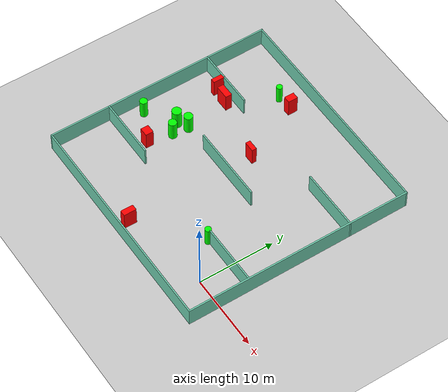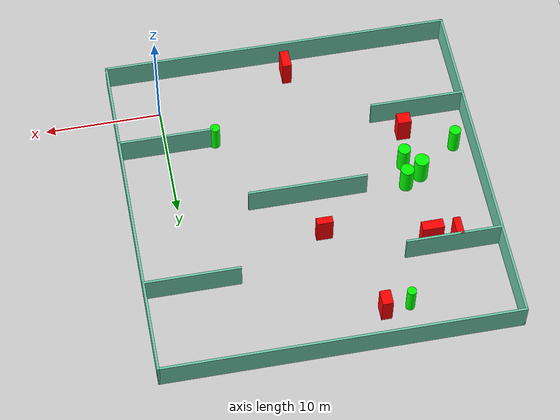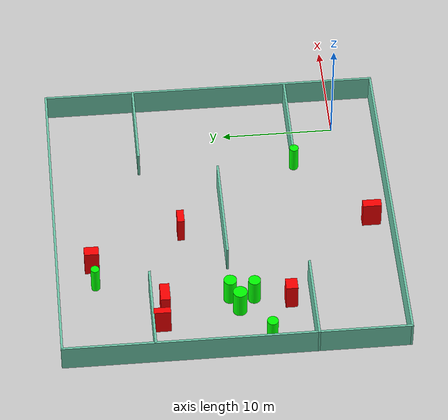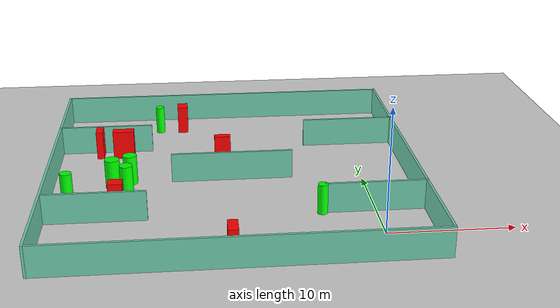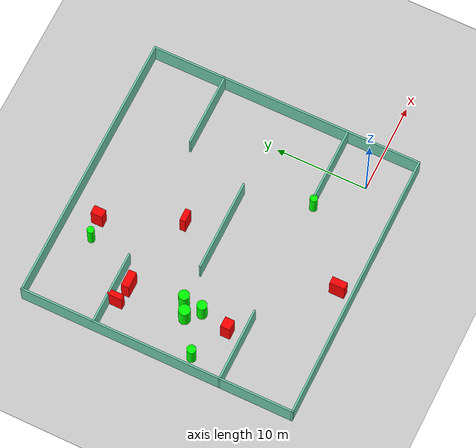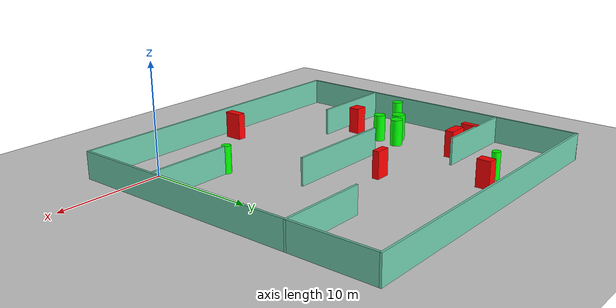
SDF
<sdf version="1.7">
 <world name="default">
  <light name="sun" type="directional">
   <pose>0 0 10 0 -0 0</pose>
   <diffuse>0.8 0.8 0.8 1</diffuse>
   <specular>0.2 0.2 0.2 1</specular>
   <attenuation>
    <range>1000</range>
    <constant>0.9</constant>
    <linear>0.01</linear>
    <quadratic>0.001</quadratic>
   </attenuation>
   <direction>-0.5 0.1 -0.9</direction>
   <spot><inner_angle>0</inner_angle><outer_angle>0</outer_angle><falloff>0</falloff></spot>
  </light>
  <model name="ground_plane">
   <static>1</static>
   <link name="link">
    <collision name="collision">
     <geometry><plane><normal>0 0 1</normal><size>100 100</size></plane></geometry>
     <surface>
      <contact><collide_bitmask>65535</collide_bitmask></contact>
      <friction><ode><mu>100</mu><mu2>50</mu2></ode></friction>
     </surface>
    </collision>
    <visual name="visual">
     <cast_shadows>0</cast_shadows>
     <geometry><plane><normal>0 0 1</normal><size>100 100</size></plane></geometry>
     <material>
      <script><uri>file://media/materials/scripts/gazebo.material</uri><name>Gazebo/Grey</name></script>
     </material>
    </visual>
   </link>
  </model>
  <gravity>0 0 -9.8</gravity>
  <magnetic_field>6e-06 2.3e-05 -4.2e-05</magnetic_field>
  <atmosphere type="adiabatic"/>
  <physics type="ode">
   <max_step_size>0.001</max_step_size>
   <real_time_factor>1</real_time_factor>
   <real_time_update_rate>1000</real_time_update_rate>
  </physics>
  <scene><ambient>0.4 0.4 0.4 1</ambient><background>0.7 0.7 0.7 1</background><shadows>1</shadows></scene>
  <spherical_coordinates>
   <surface_model>EARTH_WGS84</surface_model>
   <latitude_deg>0</latitude_deg>
   <longitude_deg>0</longitude_deg>
   <elevation>0</elevation>
   <heading_deg>0</heading_deg>
  </spherical_coordinates>
  <model name="my_base_walls">
   <link name="Wall_10">
    <collision name="Wall_10_Collision">
     <geometry><box><size>8.2 0.2 2.5</size></box></geometry>
     <pose>0 0 1.25 0 -0 0</pose>
    </collision>
    <visual name="Wall_10_Visual">
     <pose>0 0 1.25 0 -0 0</pose>
     <geometry><box><size>8.2 0.2 2.5</size></box></geometry>
     <material>
      <script><uri>file://media/materials/scripts/gazebo.material</uri><name>Gazebo/Grey</name></script>
      <ambient>0.435294 0.796078 0.67451 1</ambient>
     </material>
     <meta><layer>0</layer></meta>
    </visual>
    <pose>-11 -7 0 0 -0 0</pose>
   </link>
   <link name="Wall_12">
    <collision name="Wall_12_Collision">
     <geometry><box><size>8.2 0.2 2.5</size></box></geometry>
     <pose>0 0 1.25 0 -0 0</pose>
    </collision>
    <visual name="Wall_12_Visual">
     <pose>0 0 1.25 0 -0 0</pose>
     <geometry><box><size>8.2 0.2 2.5</size></box></geometry>
     <material>
      <script><uri>file://media/materials/scripts/gazebo.material</uri><name>Gazebo/Grey</name></script>
      <ambient>0.435294 0.796078 0.67451 1</ambient>
     </material>
     <meta><layer>0</layer></meta>
    </visual>
    <pose>-11 7 0 0 -0 0</pose>
   </link>
   <link name="Wall_14">
    <collision name="Wall_14_Collision">
     <geometry><box><size>8.2 0.2 2.5</size></box></geometry>
     <pose>0 0 1.25 0 -0 0</pose>
    </collision>
    <visual name="Wall_14_Visual">
     <pose>0 0 1.25 0 -0 0</pose>
     <geometry><box><size>8.2 0.2 2.5</size></box></geometry>
     <material>
      <script><uri>file://media/materials/scripts/gazebo.material</uri><name>Gazebo/Grey</name></script>
      <ambient>0.435294 0.796078 0.67451 1</ambient>
     </material>
     <meta><layer>0</layer></meta>
    </visual>
    <pose>11 7 0 0 -0 3.14159</pose>
   </link>
   <link name="Wall_16">
    <collision name="Wall_16_Collision">
     <geometry><box><size>10.2 0.2 2.5</size></box></geometry>
     <pose>0 0 1.25 0 -0 0</pose>
    </collision>
    <visual name="Wall_16_Visual">
     <pose>0 0 1.25 0 -0 0</pose>
     <geometry><box><size>10.2 0.2 2.5</size></box></geometry>
     <material>
      <script><uri>file://media/materials/scripts/gazebo.material</uri><name>Gazebo/Grey</name></script>
      <ambient>0.435294 0.796078 0.67451 1</ambient>
     </material>
     <meta><layer>0</layer></meta>
    </visual>
    <pose>0 0 0 0 -0 3.14159</pose>
   </link>
   <link name="Wall_2">
    <collision name="Wall_2_Collision">
     <geometry><box><size>30.2 0.2 2.5</size></box></geometry>
     <pose>0 0 1.25 0 -0 0</pose>
    </collision>
    <visual name="Wall_2_Visual">
     <pose>0 0 1.25 0 -0 0</pose>
     <geometry><box><size>30.2 0.2 2.5</size></box></geometry>
     <material>
      <script><uri>file://media/materials/scripts/gazebo.material</uri><name>Gazebo/Grey</name></script>
      <ambient>0.435294 0.796078 0.67451 1</ambient>
     </material>
     <meta><layer>0</layer></meta>
    </visual>
    <pose>0 -15 0 0 -0 3.14159</pose>
   </link>
   <link name="Wall_3">
    <collision name="Wall_3_Collision">
     <geometry><box><size>30.2 0.2 2.5</size></box></geometry>
     <pose>0 0 1.25 0 -0 0</pose>
    </collision>
    <visual name="Wall_3_Visual">
     <pose>0 0 1.25 0 -0 0</pose>
     <geometry><box><size>30.2 0.2 2.5</size></box></geometry>
     <material>
      <script><uri>file://media/materials/scripts/gazebo.material</uri><name>Gazebo/Grey</name></script>
      <ambient>0.435294 0.796078 0.67451 1</ambient>
     </material>
     <meta><layer>0</layer></meta>
    </visual>
    <pose>-15 0 0 0 -0 1.5708</pose>
   </link>
   <link name="Wall_4">
    <collision name="Wall_4_Collision">
     <geometry><box><size>30.2 0.2 2.5</size></box></geometry>
     <pose>0 0 1.25 0 -0 0</pose>
    </collision>
    <visual name="Wall_4_Visual">
     <pose>0 0 1.25 0 -0 0</pose>
     <geometry><box><size>30.2 0.2 2.5</size></box></geometry>
     <material>
      <script><uri>file://media/materials/scripts/gazebo.material</uri><name>Gazebo/Grey</name></script>
      <ambient>0.435294 0.796078 0.67451 1</ambient>
     </material>
     <meta><layer>0</layer></meta>
    </visual>
    <pose>0 15 0 0 -0 0</pose>
   </link>
   <link name="Wall_6">
    <collision name="Wall_6_Collision">
     <geometry><box><size>30.2 0.2 2.5</size></box></geometry>
     <pose>0 0 1.25 0 -0 0</pose>
    </collision>
    <visual name="Wall_6_Visual">
     <pose>0 0 1.25 0 -0 0</pose>
     <geometry><box><size>30.2 0.2 2.5</size></box></geometry>
     <material>
      <script><uri>file://media/materials/scripts/gazebo.material</uri><name>Gazebo/Grey</name></script>
      <ambient>0.435294 0.796078 0.67451 1</ambient>
     </material>
     <meta><layer>0</layer></meta>
    </visual>
    <pose>15 0 0 0 -0 1.5708</pose>
   </link>
   <link name="Wall_8">
    <collision name="Wall_8_Collision">
     <geometry><box><size>8.2 0.2 2.5</size></box></geometry>
     <pose>0 0 1.25 0 -0 0</pose>
    </collision>
    <visual name="Wall_8_Visual">
     <pose>0 0 1.25 0 -0 0</pose>
     <geometry><box><size>8.2 0.2 2.5</size></box></geometry>
     <material>
      <script><uri>file://media/materials/scripts/gazebo.material</uri><name>Gazebo/Grey</name></script>
      <ambient>0.435294 0.796078 0.67451 1</ambient>
     </material>
     <meta><layer>0</layer></meta>
    </visual>
    <pose>11 -7 0 0 -0 3.14159</pose>
   </link>
   <static>1</static>
   <pose>-11 11 0 0 -0 0</pose>
  </model>
  <model name="cylinder1">
   <static>1</static>
   <link name="link">
    <inertial>
     <mass>1</mass>
     <inertia><ixx>0.5</ixx><ixy>0</ixy><ixz>0</ixz><iyy>0.5</iyy><iyz>0</iyz><izz>1</izz></inertia>
    </inertial>
    <collision name="collision">
     <geometry><cylinder><radius>0.48600579021605295</radius><length>2.5</length></cylinder></geometry>
    </collision>
    <visual name="visual">
     <geometry><cylinder><radius>0.48600579021605295</radius><length>2.5</length></cylinder></geometry>
     <material>
      <ambient>0 1 0 1</ambient>
      <diffuse>0 1 0 1</diffuse>
      <specular>0.1 0.1 0.1 1</specular>
      <emissive>0 0 0 0</emissive>
     </material>
    </visual>
   </link>
   <pose>-24.448659805286557 7.851623802363413 1.25 0 0 0</pose>
  </model>
  <model name="cylinder2">
   <static>1</static>
   <link name="link">
    <inertial>
     <mass>1</mass>
     <inertia><ixx>0.5</ixx><ixy>0</ixy><ixz>0</ixz><iyy>0.5</iyy><iyz>0</iyz><izz>1</izz></inertia>
    </inertial>
    <collision name="collision">
     <geometry><cylinder><radius>0.38488130384860675</radius><length>2.5</length></cylinder></geometry>
    </collision>
    <visual name="visual">
     <geometry><cylinder><radius>0.38488130384860675</radius><length>2.5</length></cylinder></geometry>
     <material>
      <ambient>0 1 0 1</ambient>
      <diffuse>0 1 0 1</diffuse>
      <specular>0.1 0.1 0.1 1</specular>
      <emissive>0 0 0 0</emissive>
     </material>
    </visual>
   </link>
   <pose>-17.272925473769593 22.6899690203447 1.25 0 0 0</pose>
  </model>
  <model name="cylinder3">
   <static>1</static>
   <link name="link">
    <inertial>
     <mass>1</mass>
     <inertia><ixx>0.5</ixx><ixy>0</ixy><ixz>0</ixz><iyy>0.5</iyy><iyz>0</iyz><izz>1</izz></inertia>
    </inertial>
    <collision name="collision">
     <geometry><cylinder><radius>0.6213165270120121</radius><length>2.5</length></cylinder></geometry>
    </collision>
    <visual name="visual">
     <geometry><cylinder><radius>0.6213165270120121</radius><length>2.5</length></cylinder></geometry>
     <material>
      <ambient>0 1 0 1</ambient>
      <diffuse>0 1 0 1</diffuse>
      <specular>0.1 0.1 0.1 1</specular>
      <emissive>0 0 0 0</emissive>
     </material>
    </visual>
   </link>
   <pose>-20.961114956256388 10.331816556923567 1.25 0 0 0</pose>
  </model>
  <model name="cylinder4">
   <static>1</static>
   <link name="link">
    <inertial>
     <mass>1</mass>
     <inertia><ixx>0.5</ixx><ixy>0</ixy><ixz>0</ixz><iyy>0.5</iyy><iyz>0</iyz><izz>1</izz></inertia>
    </inertial>
    <collision name="collision">
     <geometry><cylinder><radius>0.5747008132669275</radius><length>2.5</length></cylinder></geometry>
    </collision>
    <visual name="visual">
     <geometry><cylinder><radius>0.5747008132669275</radius><length>2.5</length></cylinder></geometry>
     <material>
      <ambient>0 1 0 1</ambient>
      <diffuse>0 1 0 1</diffuse>
      <specular>0.1 0.1 0.1 1</specular>
      <emissive>0 0 0 0</emissive>
     </material>
    </visual>
   </link>
   <pose>-19.53858042357233 11.078216767854645 1.25 0 0 0</pose>
  </model>
  <model name="cylinder5">
   <static>1</static>
   <link name="link">
    <inertial>
     <mass>1</mass>
     <inertia><ixx>0.5</ixx><ixy>0</ixy><ixz>0</ixz><iyy>0.5</iyy><iyz>0</iyz><izz>1</izz></inertia>
    </inertial>
    <collision name="collision">
     <geometry><cylinder><radius>0.4085549871410208</radius><length>2.5</length></cylinder></geometry>
    </collision>
    <visual name="visual">
     <geometry><cylinder><radius>0.4085549871410208</radius><length>2.5</length></cylinder></geometry>
     <material>
      <ambient>0 1 0 1</ambient>
      <diffuse>0 1 0 1</diffuse>
      <specular>0.1 0.1 0.1 1</specular>
      <emissive>0 0 0 0</emissive>
     </material>
    </visual>
   </link>
   <pose>-4.279813363983486 3.920234383582801 1.25 0 0 0</pose>
  </model>
  <model name="cylinder6">
   <static>1</static>
   <link name="link">
    <inertial>
     <mass>1</mass>
     <inertia><ixx>0.5</ixx><ixy>0</ixy><ixz>0</ixz><iyy>0.5</iyy><iyz>0</iyz><izz>1</izz></inertia>
    </inertial>
    <collision name="collision">
     <geometry><cylinder><radius>0.5403251465768608</radius><length>2.5</length></cylinder></geometry>
    </collision>
    <visual name="visual">
     <geometry><cylinder><radius>0.5403251465768608</radius><length>2.5</length></cylinder></geometry>
     <material>
      <ambient>0 1 0 1</ambient>
      <diffuse>0 1 0 1</diffuse>
      <specular>0.1 0.1 0.1 1</specular>
      <emissive>0 0 0 0</emissive>
     </material>
    </visual>
   </link>
   <pose>-19.742995477362772 8.975484917559685 1.25 0 0 0</pose>
  </model>
  <model name="box1">
   <static>1</static>
   <link name="link">
    <inertial>
     <mass>1</mass>
     <inertia><ixx>0.083</ixx><ixy>0</ixy><ixz>0</ixz><iyy>0.083</iyy><iyz>0</iyz><izz>0.083</izz></inertia>
    </inertial>
    <collision name="collision">
     <geometry><box><size>1.8351953231717875 0.8531402382185325 2.5</size></box></geometry>
    </collision>
    <visual name="visual">
     <geometry><box><size>1.8351953231717875 0.8531402382185325 2.5</size></box></geometry>
     <material>
      <ambient>1 0 0 1</ambient>
      <diffuse>1 0 0 1</diffuse>
      <specular>0.1 0.1 0.1 1</specular>
      <emissive>0 0 0 0</emissive>
     </material>
    </visual>
    <sensor name="my_contact" type="contact">
     <contact><collision>box_collision</collision><topic>__default_topic__</topic></contact>
    </sensor>
   </link>
   <pose>-20.384736814278792 16.815781081723763 1.25 0 0 0</pose>
  </model>
  <model name="box2">
   <static>1</static>
   <link name="link">
    <inertial>
     <mass>1</mass>
     <inertia><ixx>0.083</ixx><ixy>0</ixy><ixz>0</ixz><iyy>0.083</iyy><iyz>0</iyz><izz>0.083</izz></inertia>
    </inertial>
    <collision name="collision">
     <geometry><box><size>1.3815952984352464 0.6329979208117181 2.5</size></box></geometry>
    </collision>
    <visual name="visual">
     <geometry><box><size>1.3815952984352464 0.6329979208117181 2.5</size></box></geometry>
     <material>
      <ambient>1 0 0 1</ambient>
      <diffuse>1 0 0 1</diffuse>
      <specular>0.1 0.1 0.1 1</specular>
      <emissive>0 0 0 0</emissive>
     </material>
    </visual>
    <sensor name="my_contact" type="contact">
     <contact><collision>box_collision</collision><topic>__default_topic__</topic></contact>
    </sensor>
   </link>
   <pose>-11.661704680771063 14.793944563138506 1.25 0 0 0</pose>
  </model>
  <model name="box3">
   <static>1</static>
   <link name="link">
    <inertial>
     <mass>1</mass>
     <inertia><ixx>0.083</ixx><ixy>0</ixy><ixz>0</ixz><iyy>0.083</iyy><iyz>0</iyz><izz>0.083</izz></inertia>
    </inertial>
    <collision name="collision">
     <geometry><box><size>1.1468511092962503 1.0427625914505856 2.5</size></box></geometry>
    </collision>
    <visual name="visual">
     <geometry><box><size>1.1468511092962503 1.0427625914505856 2.5</size></box></geometry>
     <material>
      <ambient>1 0 0 1</ambient>
      <diffuse>1 0 0 1</diffuse>
      <specular>0.1 0.1 0.1 1</specular>
      <emissive>0 0 0 0</emissive>
     </material>
    </visual>
    <sensor name="my_contact" type="contact">
     <contact><collision>box_collision</collision><topic>__default_topic__</topic></contact>
    </sensor>
   </link>
   <pose>-20.40413168715123 5.809046841312668 1.25 0 0 0</pose>
  </model>
  <model name="box4">
   <static>1</static>
   <link name="link">
    <inertial>
     <mass>1</mass>
     <inertia><ixx>0.083</ixx><ixy>0</ixy><ixz>0</ixz><iyy>0.083</iyy><iyz>0</iyz><izz>0.083</izz></inertia>
    </inertial>
    <collision name="collision">
     <geometry><box><size>0.908497908542204 1.2919246172451402 2.5</size></box></geometry>
    </collision>
    <visual name="visual">
     <geometry><box><size>0.908497908542204 1.2919246172451402 2.5</size></box></geometry>
     <material>
      <ambient>1 0 0 1</ambient>
      <diffuse>1 0 0 1</diffuse>
      <specular>0.1 0.1 0.1 1</specular>
      <emissive>0 0 0 0</emissive>
     </material>
    </visual>
    <sensor name="my_contact" type="contact">
     <contact><collision>box_collision</collision><topic>__default_topic__</topic></contact>
    </sensor>
   </link>
   <pose>-15.129138930937174 22.89592549554159 1.25 0 0 0</pose>
  </model>
  <model name="box5">
   <static>1</static>
   <link name="link">
    <inertial>
     <mass>1</mass>
     <inertia><ixx>0.083</ixx><ixy>0</ixy><ixz>0</ixz><iyy>0.083</iyy><iyz>0</iyz><izz>0.083</izz></inertia>
    </inertial>
    <collision name="collision">
     <geometry><box><size>0.7799283008578972 1.6615167426467958 2.5</size></box></geometry>
    </collision>
    <visual name="visual">
     <geometry><box><size>0.7799283008578972 1.6615167426467958 2.5</size></box></geometry>
     <material>
      <ambient>1 0 0 1</ambient>
      <diffuse>1 0 0 1</diffuse>
      <specular>0.1 0.1 0.1 1</specular>
      <emissive>0 0 0 0</emissive>
     </material>
    </visual>
    <sensor name="my_contact" type="contact">
     <contact><collision>box_collision</collision><topic>__default_topic__</topic></contact>
    </sensor>
   </link>
   <pose>-11.602552459450827 -2.2827604528222656 1.25 0 0 0</pose>
  </model>
  <model name="box6">
   <static>1</static>
   <link name="link">
    <inertial>
     <mass>1</mass>
     <inertia><ixx>0.083</ixx><ixy>0</ixy><ixz>0</ixz><iyy>0.083</iyy><iyz>0</iyz><izz>0.083</izz></inertia>
    </inertial>
    <collision name="collision">
     <geometry><box><size>0.6057517582766613 1.61358476083708 2.5</size></box></geometry>
    </collision>
    <visual name="visual">
     <geometry><box><size>0.6057517582766613 1.61358476083708 2.5</size></box></geometry>
     <material>
      <ambient>1 0 0 1</ambient>
      <diffuse>1 0 0 1</diffuse>
      <specular>0.1 0.1 0.1 1</specular>
      <emissive>0 0 0 0</emissive>
     </material>
    </visual>
    <sensor name="my_contact" type="contact">
     <contact><collision>box_collision</collision><topic>__default_topic__</topic></contact>
    </sensor>
   </link>
   <pose>-22.478038467628497 17.26642558042236 1.25 0 0 0</pose>
  </model>
 </world>
</sdf>
